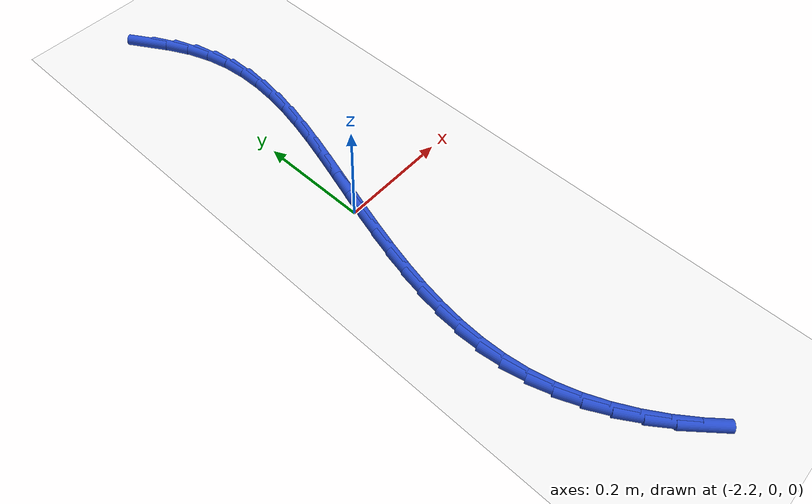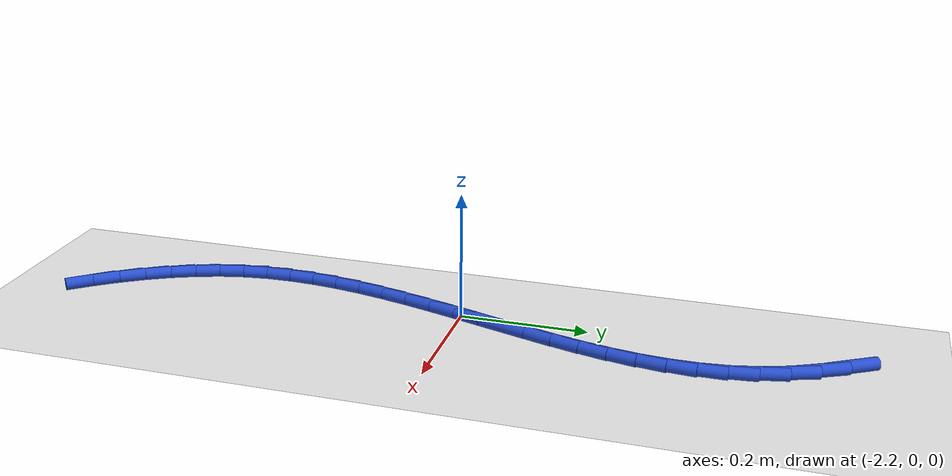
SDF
<sdf version="1.6">
 <world name="default">
  <model name="ground_plane">
   <static>1</static>
   <link name="link">
    <collision name="collision">
     <geometry><plane><normal>0 0 1</normal><size>100 100</size></plane></geometry>
     <surface><friction><ode><mu>100</mu><mu2>50</mu2></ode></friction></surface>
    </collision>
    <visual name="visual">
     <cast_shadows>0</cast_shadows>
     <geometry><plane><normal>0 0 1</normal><size>100 100</size></plane></geometry>
     <material>
      <script><uri>file://media/materials/scripts/gazebo.material</uri><name>Gazebo/WhiteGlow</name></script>
     </material>
    </visual>
   </link>
  </model>
  <model name="line">
   <link name="link_74">
    <pose>-2.182015046394484 0.5834590528269364 0.01 0 1.57 -1.0291170322119818</pose>
    <collision name="collision">
     <geometry><cylinder><radius>0.01</radius><length>0.08</length></cylinder></geometry>
    </collision>
    <visual name="visual">
     <material>
      <script><name>Gazebo/Blue</name><uri>file://media/materials/scripts/gazebo.material</uri></script>
     </material>
     <geometry><cylinder><radius>0.01</radius><length>0.08</length></cylinder></geometry>
    </visual>
   </link>
   <link name="link_75">
    <pose>-2.1581565220977343 0.5438081558496587 0.01 0 1.57 -1.108723799216583</pose>
    <collision name="collision">
     <geometry><cylinder><radius>0.01</radius><length>0.08</length></cylinder></geometry>
    </collision>
    <visual name="visual">
     <material>
      <script><name>Gazebo/Blue</name><uri>file://media/materials/scripts/gazebo.material</uri></script>
     </material>
     <geometry><cylinder><radius>0.01</radius><length>0.08</length></cylinder></geometry>
    </visual>
   </link>
   <link name="link_76">
    <pose>-2.137817776864878 0.5029699831770845 0.01 0 1.57 -1.2323606522093302</pose>
    <collision name="collision">
     <geometry><cylinder><radius>0.01</radius><length>0.08</length></cylinder></geometry>
    </collision>
    <visual name="visual">
     <material>
      <script><name>Gazebo/Blue</name><uri>file://media/materials/scripts/gazebo.material</uri></script>
     </material>
     <geometry><cylinder><radius>0.01</radius><length>0.08</length></cylinder></geometry>
    </visual>
   </link>
   <link name="link_77">
    <pose>-2.1232619480201174 0.46161558629687593 0.01 0 1.57 -1.354275352361985</pose>
    <collision name="collision">
     <geometry><cylinder><radius>0.01</radius><length>0.08</length></cylinder></geometry>
    </collision>
    <visual name="visual">
     <material>
      <script><name>Gazebo/Blue</name><uri>file://media/materials/scripts/gazebo.material</uri></script>
     </material>
     <geometry><cylinder><radius>0.01</radius><length>0.08</length></cylinder></geometry>
    </visual>
   </link>
   <link name="link_78">
    <pose>-2.114070632937382 0.4198310410463193 0.01 0 1.57 -1.4668578182196068</pose>
    <collision name="collision">
     <geometry><cylinder><radius>0.01</radius><length>0.08</length></cylinder></geometry>
    </collision>
    <visual name="visual">
     <material>
      <script><name>Gazebo/Blue</name><uri>file://media/materials/scripts/gazebo.material</uri></script>
     </material>
     <geometry><cylinder><radius>0.01</radius><length>0.08</length></cylinder></geometry>
    </visual>
   </link>
   <link name="link_79">
    <pose>-2.109672531119312 0.3776690687226377 0.01 0 1.57 -1.5666494259618575</pose>
    <collision name="collision">
     <geometry><cylinder><radius>0.01</radius><length>0.08</length></cylinder></geometry>
    </collision>
    <visual name="visual">
     <material>
      <script><name>Gazebo/Blue</name><uri>file://media/materials/scripts/gazebo.material</uri></script>
     </material>
     <geometry><cylinder><radius>0.01</radius><length>0.08</length></cylinder></geometry>
    </visual>
   </link>
   <link name="link_80">
    <pose>-2.1094963420685446 0.3351823906230541 0.01 0 1.57 1.4897178650301648</pose>
    <collision name="collision">
     <geometry><cylinder><radius>0.01</radius><length>0.08</length></cylinder></geometry>
    </collision>
    <visual name="visual">
     <material>
      <script><name>Gazebo/Blue</name><uri>file://media/materials/scripts/gazebo.material</uri></script>
     </material>
     <geometry><cylinder><radius>0.01</radius><length>0.08</length></cylinder></geometry>
    </visual>
   </link>
   <link name="link_81">
    <pose>-2.1129707652877223 0.2924237280447928 0.01 0 1.57 1.4194713583646297</pose>
    <collision name="collision">
     <geometry><cylinder><radius>0.01</radius><length>0.08</length></cylinder></geometry>
    </collision>
    <visual name="visual">
     <material>
      <script><name>Gazebo/Blue</name><uri>file://media/materials/scripts/gazebo.material</uri></script>
     </material>
     <geometry><cylinder><radius>0.01</radius><length>0.08</length></cylinder></geometry>
    </visual>
   </link>
   <link name="link_82">
    <pose>-2.1195245002794825 0.24944580228507693 0.01 0 1.57 1.363772875262135</pose>
    <collision name="collision">
     <geometry><cylinder><radius>0.01</radius><length>0.08</length></cylinder></geometry>
    </collision>
    <visual name="visual">
     <material>
      <script><name>Gazebo/Blue</name><uri>file://media/materials/scripts/gazebo.material</uri></script>
     </material>
     <geometry><cylinder><radius>0.01</radius><length>0.08</length></cylinder></geometry>
    </visual>
   </link>
   <link name="link_83">
    <pose>-2.128586246546465 0.20630133464112932 0.01 0 1.57 1.321820871856274</pose>
    <collision name="collision">
     <geometry><cylinder><radius>0.01</radius><length>0.08</length></cylinder></geometry>
    </collision>
    <visual name="visual">
     <material>
      <script><name>Gazebo/Blue</name><uri>file://media/materials/scripts/gazebo.material</uri></script>
     </material>
     <geometry><cylinder><radius>0.01</radius><length>0.08</length></cylinder></geometry>
    </visual>
   </link>
   <link name="link_84">
    <pose>-2.139584703591309 0.16304304641017442 0.01 0 1.57 1.2927762835897199</pose>
    <collision name="collision">
     <geometry><cylinder><radius>0.01</radius><length>0.08</length></cylinder></geometry>
    </collision>
    <visual name="visual">
     <material>
      <script><name>Gazebo/Blue</name><uri>file://media/materials/scripts/gazebo.material</uri></script>
     </material>
     <geometry><cylinder><radius>0.01</radius><length>0.08</length></cylinder></geometry>
    </visual>
   </link>
   <link name="link_85">
    <pose>-2.1519485709166553 0.1197236588894348 0.01 0 1.57 1.275959887000308</pose>
    <collision name="collision">
     <geometry><cylinder><radius>0.01</radius><length>0.08</length></cylinder></geometry>
    </collision>
    <visual name="visual">
     <material>
      <script><name>Gazebo/Blue</name><uri>file://media/materials/scripts/gazebo.material</uri></script>
     </material>
     <geometry><cylinder><radius>0.01</radius><length>0.08</length></cylinder></geometry>
    </visual>
   </link>
   <link name="link_86">
    <pose>-2.1651066752744077 0.07639589107566076 0.01 0 1.57 1.2699573671430913</pose>
    <collision name="collision">
     <geometry><cylinder><radius>0.01</radius><length>0.08</length></cylinder></geometry>
    </collision>
    <visual name="visual">
     <material>
      <script><name>Gazebo/Blue</name><uri>file://media/materials/scripts/gazebo.material</uri></script>
     </material>
     <geometry><cylinder><radius>0.01</radius><length>0.08</length></cylinder></geometry>
    </visual>
   </link>
   <link name="link_87">
    <pose>-2.178535876465523 0.03311159360081636 0.01 0 1.57 1.272136697005346</pose>
    <collision name="collision">
     <geometry><cylinder><radius>0.01</radius><length>0.08</length></cylinder></geometry>
    </collision>
    <visual name="visual">
     <material>
      <script><name>Gazebo/Blue</name><uri>file://media/materials/scripts/gazebo.material</uri></script>
     </material>
     <geometry><cylinder><radius>0.01</radius><length>0.08</length></cylinder></geometry>
    </visual>
   </link>
   <link name="link_88">
    <pose>-2.1918330581859533 -0.010079552753390236 0.01 0 1.57 1.2822000353560534</pose>
    <collision name="collision">
     <geometry><cylinder><radius>0.01</radius><length>0.08</length></cylinder></geometry>
    </collision>
    <visual name="visual">
     <material>
      <script><name>Gazebo/Blue</name><uri>file://media/materials/scripts/gazebo.material</uri></script>
     </material>
     <geometry><cylinder><radius>0.01</radius><length>0.08</length></cylinder></geometry>
    </visual>
   </link>
   <link name="link_89">
    <pose>-2.204613543790795 -0.053128200566361646 0.01 0 1.57 1.300403121191826</pose>
    <collision name="collision">
     <geometry><cylinder><radius>0.01</radius><length>0.08</length></cylinder></geometry>
    </collision>
    <visual name="visual">
     <material>
      <script><name>Gazebo/Blue</name><uri>file://media/materials/scripts/gazebo.material</uri></script>
     </material>
     <geometry><cylinder><radius>0.01</radius><length>0.08</length></cylinder></geometry>
    </visual>
   </link>
   <link name="link_90">
    <pose>-2.216492656635147 -0.09598500241750169 0.01 0 1.57 1.3271617519169259</pose>
    <collision name="collision">
     <geometry><cylinder><radius>0.01</radius><length>0.08</length></cylinder></geometry>
    </collision>
    <visual name="visual">
     <material>
      <script><name>Gazebo/Blue</name><uri>file://media/materials/scripts/gazebo.material</uri></script>
     </material>
     <geometry><cylinder><radius>0.01</radius><length>0.08</length></cylinder></geometry>
    </visual>
   </link>
   <link name="link_91">
    <pose>-2.227085720074104 -0.13860061088621387 0.01 0 1.57 1.3630332246749823</pose>
    <collision name="collision">
     <geometry><cylinder><radius>0.01</radius><length>0.08</length></cylinder></geometry>
    </collision>
    <visual name="visual">
     <material>
      <script><name>Gazebo/Blue</name><uri>file://media/materials/scripts/gazebo.material</uri></script>
     </material>
     <geometry><cylinder><radius>0.01</radius><length>0.08</length></cylinder></geometry>
    </visual>
   </link>
   <link name="link_92">
    <pose>-2.236008057462764 -0.18092567855190234 0.01 0 1.57 1.4086756071364106</pose>
    <collision name="collision">
     <geometry><cylinder><radius>0.01</radius><length>0.08</length></cylinder></geometry>
    </collision>
    <visual name="visual">
     <material>
      <script><name>Gazebo/Blue</name><uri>file://media/materials/scripts/gazebo.material</uri></script>
     </material>
     <geometry><cylinder><radius>0.01</radius><length>0.08</length></cylinder></geometry>
    </visual>
   </link>
   <link name="link_93">
    <pose>-2.242874992156224 -0.22291085799396898 0.01 0 1.57 1.4647702507343607</pose>
    <collision name="collision">
     <geometry><cylinder><radius>0.01</radius><length>0.08</length></cylinder></geometry>
    </collision>
    <visual name="visual">
     <material>
      <script><name>Gazebo/Blue</name><uri>file://media/materials/scripts/gazebo.material</uri></script>
     </material>
     <geometry><cylinder><radius>0.01</radius><length>0.08</length></cylinder></geometry>
    </visual>
   </link>
   <link name="link_94">
    <pose>-2.2473018475095796 -0.26450680179181807 0.01 0 1.57 1.5318897768650228</pose>
    <collision name="collision">
     <geometry><cylinder><radius>0.01</radius><length>0.08</length></cylinder></geometry>
    </collision>
    <visual name="visual">
     <material>
      <script><name>Gazebo/Blue</name><uri>file://media/materials/scripts/gazebo.material</uri></script>
     </material>
     <geometry><cylinder><radius>0.01</radius><length>0.08</length></cylinder></geometry>
    </visual>
   </link>
   <link name="link_95">
    <pose>-2.2489039468779297 -0.30566416252485296 0.01 0 1.57 -1.5312949824028903</pose>
    <collision name="collision">
     <geometry><cylinder><radius>0.01</radius><length>0.08</length></cylinder></geometry>
    </collision>
    <visual name="visual">
     <material>
      <script><name>Gazebo/Blue</name><uri>file://media/materials/scripts/gazebo.material</uri></script>
     </material>
     <geometry><cylinder><radius>0.01</radius><length>0.08</length></cylinder></geometry>
    </visual>
   </link>
   <link name="link_96">
    <pose>-2.2472966136163697 -0.34633359277247716 0.01 0 1.57 -1.4419069612536677</pose>
    <collision name="collision">
     <geometry><cylinder><radius>0.01</radius><length>0.08</length></cylinder></geometry>
    </collision>
    <visual name="visual">
     <material>
      <script><name>Gazebo/Blue</name><uri>file://media/materials/scripts/gazebo.material</uri></script>
     </material>
     <geometry><cylinder><radius>0.01</radius><length>0.08</length></cylinder></geometry>
    </visual>
   </link>
   <link name="link_97">
    <pose>-2.2420951710799972 -0.38646574511409415 0.01 0 1.57 -1.3440106407893904</pose>
    <collision name="collision">
     <geometry><cylinder><radius>0.01</radius><length>0.08</length></cylinder></geometry>
    </collision>
    <visual name="visual">
     <material>
      <script><name>Gazebo/Blue</name><uri>file://media/materials/scripts/gazebo.material</uri></script>
     </material>
     <geometry><cylinder><radius>0.01</radius><length>0.08</length></cylinder></geometry>
    </visual>
   </link>
   <link name="link_98">
    <pose>-2.232970857839968 -0.4260068111617125 0.01 0 1.57 -1.2487151467971909</pose>
    <collision name="collision">
     <geometry><cylinder><radius>0.01</radius><length>0.08</length></cylinder></geometry>
    </collision>
    <visual name="visual">
     <material>
      <script><name>Gazebo/Blue</name><uri>file://media/materials/scripts/gazebo.material</uri></script>
     </material>
     <geometry><cylinder><radius>0.01</radius><length>0.08</length></cylinder></geometry>
    </visual>
   </link>
   <link name="link_99">
    <pose>-2.2200020151167985 -0.46487050350331927 0.01 0 1.57 -1.1607582116890507</pose>
    <collision name="collision">
     <geometry><cylinder><radius>0.01</radius><length>0.08</length></cylinder></geometry>
    </collision>
    <visual name="visual">
     <material>
      <script><name>Gazebo/Blue</name><uri>file://media/materials/scripts/gazebo.material</uri></script>
     </material>
     <geometry><cylinder><radius>0.01</radius><length>0.08</length></cylinder></geometry>
    </visual>
   </link>
   <link name="link_100">
    <pose>-2.203447071336066 -0.5029561672039511 0.01 0 1.57 -1.0800415206273883</pose>
    <collision name="collision">
     <geometry><cylinder><radius>0.01</radius><length>0.08</length></cylinder></geometry>
    </collision>
    <visual name="visual">
     <material>
      <script><name>Gazebo/Blue</name><uri>file://media/materials/scripts/gazebo.material</uri></script>
     </material>
     <geometry><cylinder><radius>0.01</radius><length>0.08</length></cylinder></geometry>
    </visual>
   </link>
   <link name="link_101">
    <pose>-2.1835652546690656 -0.5401630835241946 0.01 0 1.57 -1.0061203656802977</pose>
    <collision name="collision">
     <geometry><cylinder><radius>0.01</radius><length>0.08</length></cylinder></geometry>
    </collision>
    <visual name="visual">
     <material>
      <script><name>Gazebo/Blue</name><uri>file://media/materials/scripts/gazebo.material</uri></script>
     </material>
     <geometry><cylinder><radius>0.01</radius><length>0.08</length></cylinder></geometry>
    </visual>
   </link>
   <link name="link_102">
    <pose>-2.160615793287089 -0.5763905337246364 0.01 0 1.57 -0.9383580848659828</pose>
    <collision name="collision">
     <geometry><cylinder><radius>0.01</radius><length>0.08</length></cylinder></geometry>
    </collision>
    <visual name="visual">
     <material>
      <script><name>Gazebo/Blue</name><uri>file://media/materials/scripts/gazebo.material</uri></script>
     </material>
     <geometry><cylinder><radius>0.01</radius><length>0.08</length></cylinder></geometry>
    </visual>
   </link>
   <link name="link_103">
    <pose>-2.134857915361429 -0.6115377990658643 0.01 0 1.57 -0.876027387267717</pose>
    <collision name="collision">
     <geometry><cylinder><radius>0.01</radius><length>0.08</length></cylinder></geometry>
    </collision>
    <visual name="visual">
     <material>
      <script><name>Gazebo/Blue</name><uri>file://media/materials/scripts/gazebo.material</uri></script>
     </material>
     <geometry><cylinder><radius>0.01</radius><length>0.08</length></cylinder></geometry>
    </visual>
   </link>
  </model>
 </world>
</sdf>
